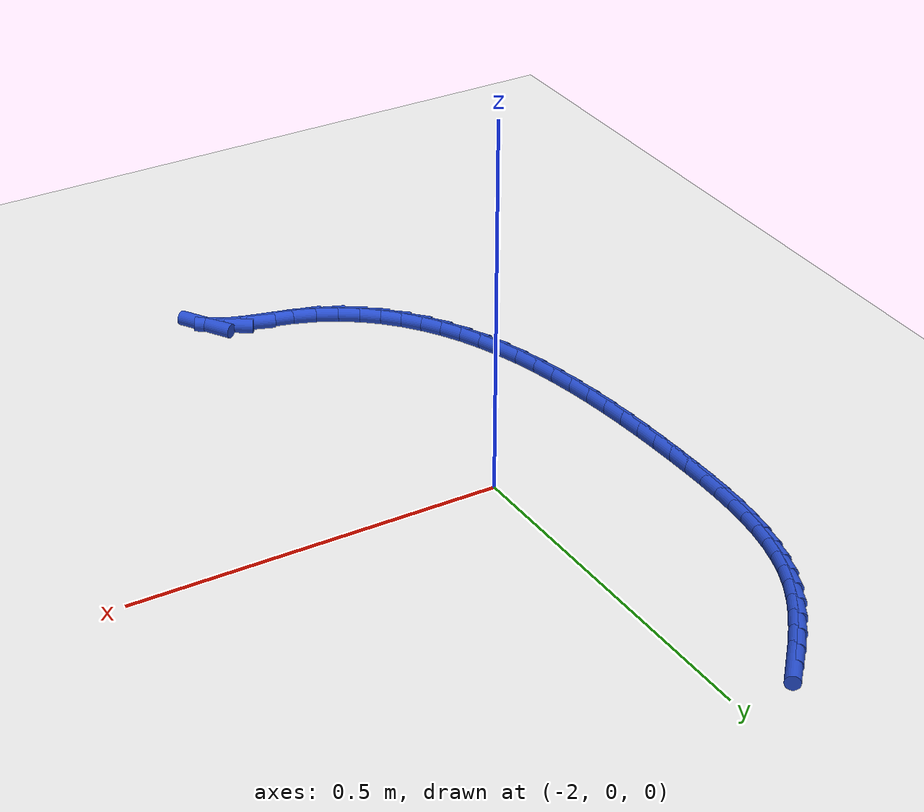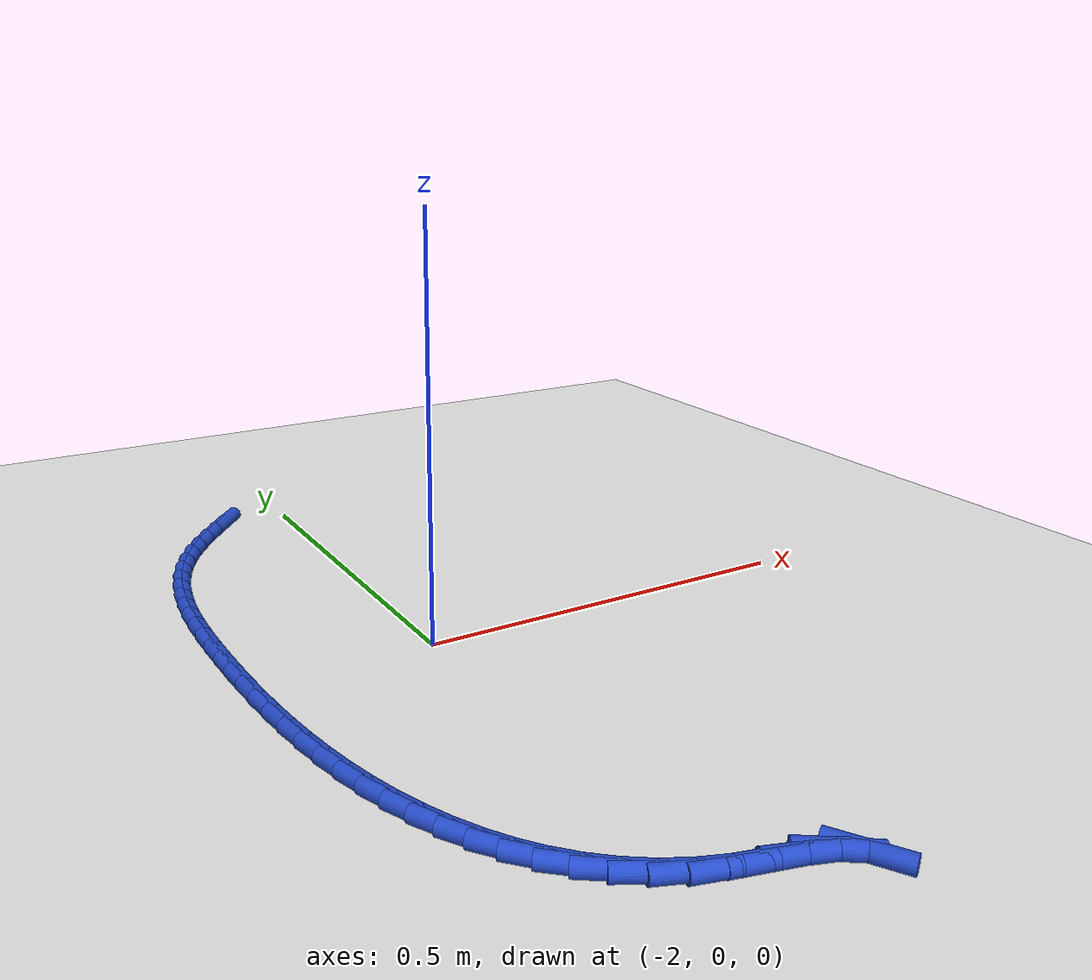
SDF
<sdf version="1.6">
 <world name="default">
  <model name="ground_plane">
   <static>1</static>
   <link name="link">
    <collision name="collision">
     <geometry><plane><normal>0 0 1</normal><size>100 100</size></plane></geometry>
     <surface><friction><ode><mu>100</mu><mu2>50</mu2></ode></friction></surface>
    </collision>
    <visual name="visual">
     <cast_shadows>0</cast_shadows>
     <geometry><plane><normal>0 0 1</normal><size>100 100</size></plane></geometry>
     <material>
      <script><uri>file://media/materials/scripts/gazebo.material</uri><name>Gazebo/WhiteGlow</name></script>
     </material>
    </visual>
   </link>
  </model>
  <model name="line">
   <link name="link_101">
    <pose>-2.095246299958888 0.4884862712042234 0.01 0 1.57 0.8736026142234244</pose>
    <collision name="collision">
     <geometry><cylinder><radius>0.01</radius><length>0.08</length></cylinder></geometry>
    </collision>
    <visual name="visual">
     <material>
      <script><name>Gazebo/Blue</name><uri>file://media/materials/scripts/gazebo.material</uri></script>
     </material>
     <geometry><cylinder><radius>0.01</radius><length>0.08</length></cylinder></geometry>
    </visual>
   </link>
   <link name="link_102">
    <pose>-2.115105131242476 0.4647743038715531 0.01 0 1.57 0.9028716398551533</pose>
    <collision name="collision">
     <geometry><cylinder><radius>0.01</radius><length>0.08</length></cylinder></geometry>
    </collision>
    <visual name="visual">
     <material>
      <script><name>Gazebo/Blue</name><uri>file://media/materials/scripts/gazebo.material</uri></script>
     </material>
     <geometry><cylinder><radius>0.01</radius><length>0.08</length></cylinder></geometry>
    </visual>
   </link>
   <link name="link_103">
    <pose>-2.134064356856189 0.4407412666133561 0.01 0 1.57 0.9443984838956437</pose>
    <collision name="collision">
     <geometry><cylinder><radius>0.01</radius><length>0.08</length></cylinder></geometry>
    </collision>
    <visual name="visual">
     <material>
      <script><name>Gazebo/Blue</name><uri>file://media/materials/scripts/gazebo.material</uri></script>
     </material>
     <geometry><cylinder><radius>0.01</radius><length>0.08</length></cylinder></geometry>
    </visual>
   </link>
   <link name="link_104">
    <pose>-2.1517809406140986 0.41625772820655715 0.01 0 1.57 0.9989318150647336</pose>
    <collision name="collision">
     <geometry><cylinder><radius>0.01</radius><length>0.08</length></cylinder></geometry>
    </collision>
    <visual name="visual">
     <material>
      <script><name>Gazebo/Blue</name><uri>file://media/materials/scripts/gazebo.material</uri></script>
     </material>
     <geometry><cylinder><radius>0.01</radius><length>0.08</length></cylinder></geometry>
    </visual>
   </link>
   <link name="link_105">
    <pose>-2.1679118463302776 0.39119425742808245 0.01 0 1.57 1.067145214923841</pose>
    <collision name="collision">
     <geometry><cylinder><radius>0.01</radius><length>0.08</length></cylinder></geometry>
    </collision>
    <visual name="visual">
     <material>
      <script><name>Gazebo/Blue</name><uri>file://media/materials/scripts/gazebo.material</uri></script>
     </material>
     <geometry><cylinder><radius>0.01</radius><length>0.08</length></cylinder></geometry>
    </visual>
   </link>
   <link name="link_106">
    <pose>-2.182114037818798 0.36542142305485686 0.01 0 1.57 1.1478703538519937</pose>
    <collision name="collision">
     <geometry><cylinder><radius>0.01</radius><length>0.08</length></cylinder></geometry>
    </collision>
    <visual name="visual">
     <material>
      <script><name>Gazebo/Blue</name><uri>file://media/materials/scripts/gazebo.material</uri></script>
     </material>
     <geometry><cylinder><radius>0.01</radius><length>0.08</length></cylinder></geometry>
    </visual>
   </link>
   <link name="link_107">
    <pose>-2.194086227001875 0.3388216794875557 0.01 0 1.57 1.2286484760533884</pose>
    <collision name="collision">
     <geometry><cylinder><radius>0.01</radius><length>0.08</length></cylinder></geometry>
    </collision>
    <visual name="visual">
     <material>
      <script><name>Gazebo/Blue</name><uri>file://media/materials/scripts/gazebo.material</uri></script>
     </material>
     <geometry><cylinder><radius>0.01</radius><length>0.08</length></cylinder></geometry>
    </visual>
   </link>
   <link name="link_108">
    <pose>-2.203862258634103 0.31137289294140424 0.01 0 1.57 1.302442038383089</pose>
    <collision name="collision">
     <geometry><cylinder><radius>0.01</radius><length>0.08</length></cylinder></geometry>
    </collision>
    <visual name="visual">
     <material>
      <script><name>Gazebo/Blue</name><uri>file://media/materials/scripts/gazebo.material</uri></script>
     </material>
     <geometry><cylinder><radius>0.01</radius><length>0.08</length></cylinder></geometry>
    </visual>
   </link>
   <link name="link_109">
    <pose>-2.2116372588958693 0.28309884621156745 0.01 0 1.57 1.3682774759713874</pose>
    <collision name="collision">
     <geometry><cylinder><radius>0.01</radius><length>0.08</length></cylinder></geometry>
    </collision>
    <visual name="visual">
     <material>
      <script><name>Gazebo/Blue</name><uri>file://media/materials/scripts/gazebo.material</uri></script>
     </material>
     <geometry><cylinder><radius>0.01</radius><length>0.08</length></cylinder></geometry>
    </visual>
   </link>
   <link name="link_110">
    <pose>-2.217607384597836 0.2540236155121025 0.01 0 1.57 1.4257233382082146</pose>
    <collision name="collision">
     <geometry><cylinder><radius>0.01</radius><length>0.08</length></cylinder></geometry>
    </collision>
    <visual name="visual">
     <material>
      <script><name>Gazebo/Blue</name><uri>file://media/materials/scripts/gazebo.material</uri></script>
     </material>
     <geometry><cylinder><radius>0.01</radius><length>0.08</length></cylinder></geometry>
    </visual>
   </link>
   <link name="link_111">
    <pose>-2.221968792550665 0.22417127705706658 0.01 0 1.57 1.4747421914005194</pose>
    <collision name="collision">
     <geometry><cylinder><radius>0.01</radius><length>0.08</length></cylinder></geometry>
    </collision>
    <visual name="visual">
     <material>
      <script><name>Gazebo/Blue</name><uri>file://media/materials/scripts/gazebo.material</uri></script>
     </material>
     <geometry><cylinder><radius>0.01</radius><length>0.08</length></cylinder></geometry>
    </visual>
   </link>
   <link name="link_112">
    <pose>-2.2249176395650188 0.19356590706051668 0.01 0 1.57 1.5155635807774035</pose>
    <collision name="collision">
     <geometry><cylinder><radius>0.01</radius><length>0.08</length></cylinder></geometry>
    </collision>
    <visual name="visual">
     <material>
      <script><name>Gazebo/Blue</name><uri>file://media/materials/scripts/gazebo.material</uri></script>
     </material>
     <geometry><cylinder><radius>0.01</radius><length>0.08</length></cylinder></geometry>
    </visual>
   </link>
   <link name="link_113">
    <pose>-2.2266500824515583 0.16223158173651106 0.01 0 1.57 1.5485711088913037</pose>
    <collision name="collision">
     <geometry><cylinder><radius>0.01</radius><length>0.08</length></cylinder></geometry>
    </collision>
    <visual name="visual">
     <material>
      <script><name>Gazebo/Blue</name><uri>file://media/materials/scripts/gazebo.material</uri></script>
     </material>
     <geometry><cylinder><radius>0.01</radius><length>0.08</length></cylinder></geometry>
    </visual>
   </link>
   <link name="link_114">
    <pose>-2.2273622780209474 0.1301923772991067 0.01 0 1.57 -1.5673765689765466</pose>
    <collision name="collision">
     <geometry><cylinder><radius>0.01</radius><length>0.08</length></cylinder></geometry>
    </collision>
    <visual name="visual">
     <material>
      <script><name>Gazebo/Blue</name><uri>file://media/materials/scripts/gazebo.material</uri></script>
     </material>
     <geometry><cylinder><radius>0.01</radius><length>0.08</length></cylinder></geometry>
    </visual>
   </link>
   <link name="link_115">
    <pose>-2.2272503830838466 0.09747236996236047 0.01 0 1.57 -1.5486339576094355</pose>
    <collision name="collision">
     <geometry><cylinder><radius>0.01</radius><length>0.08</length></cylinder></geometry>
    </collision>
    <visual name="visual">
     <material>
      <script><name>Gazebo/Blue</name><uri>file://media/materials/scripts/gazebo.material</uri></script>
     </material>
     <geometry><cylinder><radius>0.01</radius><length>0.08</length></cylinder></geometry>
    </visual>
   </link>
   <link name="link_116">
    <pose>-2.226510554450919 0.06409563594033069 0.01 0 1.57 -1.5349998627212986</pose>
    <collision name="collision">
     <geometry><cylinder><radius>0.01</radius><length>0.08</length></cylinder></geometry>
    </collision>
    <visual name="visual">
     <material>
      <script><name>Gazebo/Blue</name><uri>file://media/materials/scripts/gazebo.material</uri></script>
     </material>
     <geometry><cylinder><radius>0.01</radius><length>0.08</length></cylinder></geometry>
    </visual>
   </link>
   <link name="link_117">
    <pose>-2.225293464238758 0.03010986821798673 0.01 0 1.57 -1.5201254011546725</pose>
    <collision name="collision">
     <geometry><cylinder><radius>0.01</radius><length>0.08</length></cylinder></geometry>
    </collision>
    <visual name="visual">
     <material>
      <script><name>Gazebo/Blue</name><uri>file://media/materials/scripts/gazebo.material</uri></script>
     </material>
     <geometry><cylinder><radius>0.01</radius><length>0.08</length></cylinder></geometry>
    </visual>
   </link>
   <link name="link_118">
    <pose>-2.2235467761884466 -0.004331833282360545 0.01 0 1.57 -1.502195282892215</pose>
    <collision name="collision">
     <geometry><cylinder><radius>0.01</radius><length>0.08</length></cylinder></geometry>
    </collision>
    <visual name="visual">
     <material>
      <script><name>Gazebo/Blue</name><uri>file://media/materials/scripts/gazebo.material</uri></script>
     </material>
     <geometry><cylinder><radius>0.01</radius><length>0.08</length></cylinder></geometry>
    </visual>
   </link>
   <link name="link_119">
    <pose>-2.221161538502298 -0.0390469724593861 0.01 0 1.57 -1.4810326111202474</pose>
    <collision name="collision">
     <geometry><cylinder><radius>0.01</radius><length>0.08</length></cylinder></geometry>
    </collision>
    <visual name="visual">
     <material>
      <script><name>Gazebo/Blue</name><uri>file://media/materials/scripts/gazebo.material</uri></script>
     </material>
     <geometry><cylinder><radius>0.01</radius><length>0.08</length></cylinder></geometry>
    </visual>
   </link>
   <link name="link_120">
    <pose>-2.218028796910353 -0.07385305192810045 0.01 0 1.57 -1.4563837478082189</pose>
    <collision name="collision">
     <geometry><cylinder><radius>0.01</radius><length>0.08</length></cylinder></geometry>
    </collision>
    <visual name="visual">
     <material>
      <script><name>Gazebo/Blue</name><uri>file://media/materials/scripts/gazebo.material</uri></script>
     </material>
     <geometry><cylinder><radius>0.01</radius><length>0.08</length></cylinder></geometry>
    </visual>
   </link>
   <link name="link_121">
    <pose>-2.2140395971426554 -0.10856757430351548 0.01 0 1.57 -1.4279164255188967</pose>
    <collision name="collision">
     <geometry><cylinder><radius>0.01</radius><length>0.08</length></cylinder></geometry>
    </collision>
    <visual name="visual">
     <material>
      <script><name>Gazebo/Blue</name><uri>file://media/materials/scripts/gazebo.material</uri></script>
     </material>
     <geometry><cylinder><radius>0.01</radius><length>0.08</length></cylinder></geometry>
    </visual>
   </link>
   <link name="link_122">
    <pose>-2.209084984929247 -0.14300804220064264 0.01 0 1.57 -1.3952163042216463</pose>
    <collision name="collision">
     <geometry><cylinder><radius>0.01</radius><length>0.08</length></cylinder></geometry>
    </collision>
    <visual name="visual">
     <material>
      <script><name>Gazebo/Blue</name><uri>file://media/materials/scripts/gazebo.material</uri></script>
     </material>
     <geometry><cylinder><radius>0.01</radius><length>0.08</length></cylinder></geometry>
    </visual>
   </link>
   <link name="link_123">
    <pose>-2.2030560060001707 -0.17699195823449343 0.01 0 1.57 -1.3577835167807562</pose>
    <collision name="collision">
     <geometry><cylinder><radius>0.01</radius><length>0.08</length></cylinder></geometry>
    </collision>
    <visual name="visual">
     <material>
      <script><name>Gazebo/Blue</name><uri>file://media/materials/scripts/gazebo.material</uri></script>
     </material>
     <geometry><cylinder><radius>0.01</radius><length>0.08</length></cylinder></geometry>
    </visual>
   </link>
   <link name="link_124">
    <pose>-2.1958437060854674 -0.21033682502007922 0.01 0 1.57 -1.3150316197914258</pose>
    <collision name="collision">
     <geometry><cylinder><radius>0.01</radius><length>0.08</length></cylinder></geometry>
    </collision>
    <visual name="visual">
     <material>
      <script><name>Gazebo/Blue</name><uri>file://media/materials/scripts/gazebo.material</uri></script>
     </material>
     <geometry><cylinder><radius>0.01</radius><length>0.08</length></cylinder></geometry>
    </visual>
   </link>
   <link name="link_125">
    <pose>-2.1873391309151815 -0.2428601451724124 0.01 0 1.57 -1.2662927638131019</pose>
    <collision name="collision">
     <geometry><cylinder><radius>0.01</radius><length>0.08</length></cylinder></geometry>
    </collision>
    <visual name="visual">
     <material>
      <script><name>Gazebo/Blue</name><uri>file://media/materials/scripts/gazebo.material</uri></script>
     </material>
     <geometry><cylinder><radius>0.01</radius><length>0.08</length></cylinder></geometry>
    </visual>
   </link>
   <link name="link_126">
    <pose>-2.177433326219353 -0.27437942130650256 0.01 0 1.57 -1.2108350033561854</pose>
    <collision name="collision">
     <geometry><cylinder><radius>0.01</radius><length>0.08</length></cylinder></geometry>
    </collision>
    <visual name="visual">
     <material>
      <script><name>Gazebo/Blue</name><uri>file://media/materials/scripts/gazebo.material</uri></script>
     </material>
     <geometry><cylinder><radius>0.01</radius><length>0.08</length></cylinder></geometry>
    </visual>
   </link>
   <link name="link_127">
    <pose>-2.1660173377280256 -0.304712156037362 0.01 0 1.57 -1.1479003850581433</pose>
    <collision name="collision">
     <geometry><cylinder><radius>0.01</radius><length>0.08</length></cylinder></geometry>
    </collision>
    <visual name="visual">
     <material>
      <script><name>Gazebo/Blue</name><uri>file://media/materials/scripts/gazebo.material</uri></script>
     </material>
     <geometry><cylinder><radius>0.01</radius><length>0.08</length></cylinder></geometry>
    </visual>
   </link>
   <link name="link_128">
    <pose>-2.152982211171242 -0.3336758519800025 0.01 0 1.57 -1.0767750641102416</pose>
    <collision name="collision">
     <geometry><cylinder><radius>0.01</radius><length>0.08</length></cylinder></geometry>
    </collision>
    <visual name="visual">
     <material>
      <script><name>Gazebo/Blue</name><uri>file://media/materials/scripts/gazebo.material</uri></script>
     </material>
     <geometry><cylinder><radius>0.01</radius><length>0.08</length></cylinder></geometry>
    </visual>
   </link>
   <link name="link_129">
    <pose>-2.138218992279043 -0.36108801174943506 0.01 0 1.57 -0.9969031620404595</pose>
    <collision name="collision">
     <geometry><cylinder><radius>0.01</radius><length>0.08</length></cylinder></geometry>
    </collision>
    <visual name="visual">
     <material>
      <script><name>Gazebo/Blue</name><uri>file://media/materials/scripts/gazebo.material</uri></script>
     </material>
     <geometry><cylinder><radius>0.01</radius><length>0.08</length></cylinder></geometry>
    </visual>
   </link>
   <link name="link_130">
    <pose>-2.121618726781473 -0.3867661379606714 0.01 0 1.57 -0.9080503153531257</pose>
    <collision name="collision">
     <geometry><cylinder><radius>0.01</radius><length>0.08</length></cylinder></geometry>
    </collision>
    <visual name="visual">
     <material>
      <script><name>Gazebo/Blue</name><uri>file://media/materials/scripts/gazebo.material</uri></script>
     </material>
     <geometry><cylinder><radius>0.01</radius><length>0.08</length></cylinder></geometry>
    </visual>
   </link>
   <link name="link_131">
    <pose>-2.103072460408572 -0.41052773322872277 0.01 0 1.57 -0.8105052926521453</pose>
    <collision name="collision">
     <geometry><cylinder><radius>0.01</radius><length>0.08</length></cylinder></geometry>
    </collision>
    <visual name="visual">
     <material>
      <script><name>Gazebo/Blue</name><uri>file://media/materials/scripts/gazebo.material</uri></script>
     </material>
     <geometry><cylinder><radius>0.01</radius><length>0.08</length></cylinder></geometry>
    </visual>
   </link>
   <link name="link_132">
    <pose>-2.0824712388903848 -0.43219030016860144 0.01 0 1.57 -0.7052759372398526</pose>
    <collision name="collision">
     <geometry><cylinder><radius>0.01</radius><length>0.08</length></cylinder></geometry>
    </collision>
    <visual name="visual">
     <material>
      <script><name>Gazebo/Blue</name><uri>file://media/materials/scripts/gazebo.material</uri></script>
     </material>
     <geometry><cylinder><radius>0.01</radius><length>0.08</length></cylinder></geometry>
    </visual>
   </link>
   <link name="link_133">
    <pose>-2.059706107956951 -0.4515713413953173 0.01 0 1.57 -0.5941987373428722</pose>
    <collision name="collision">
     <geometry><cylinder><radius>0.01</radius><length>0.08</length></cylinder></geometry>
    </collision>
    <visual name="visual">
     <material>
      <script><name>Gazebo/Blue</name><uri>file://media/materials/scripts/gazebo.material</uri></script>
     </material>
     <geometry><cylinder><radius>0.01</radius><length>0.08</length></cylinder></geometry>
    </visual>
   </link>
   <link name="link_134">
    <pose>-2.034668113338316 -0.4684883595238829 0.01 0 1.57 -0.47986931901812013</pose>
    <collision name="collision">
     <geometry><cylinder><radius>0.01</radius><length>0.08</length></cylinder></geometry>
    </collision>
    <visual name="visual">
     <material>
      <script><name>Gazebo/Blue</name><uri>file://media/materials/scripts/gazebo.material</uri></script>
     </material>
     <geometry><cylinder><radius>0.01</radius><length>0.08</length></cylinder></geometry>
    </visual>
   </link>
   <link name="link_135">
    <pose>-2.0072483007645197 -0.48275885716930933 0.01 0 1.57 -0.36534960983908865</pose>
    <collision name="collision">
     <geometry><cylinder><radius>0.01</radius><length>0.08</length></cylinder></geometry>
    </collision>
    <visual name="visual">
     <material>
      <script><name>Gazebo/Blue</name><uri>file://media/materials/scripts/gazebo.material</uri></script>
     </material>
     <geometry><cylinder><radius>0.01</radius><length>0.08</length></cylinder></geometry>
    </visual>
   </link>
   <link name="link_136">
    <pose>-1.9773377159656056 -0.4942003369466081 0.01 0 1.57 -0.2668181219177507</pose>
    <collision name="collision">
     <geometry><cylinder><radius>0.01</radius><length>0.08</length></cylinder></geometry>
    </collision>
    <visual name="visual">
     <material>
      <script><name>Gazebo/Blue</name><uri>file://media/materials/scripts/gazebo.material</uri></script>
     </material>
     <geometry><cylinder><radius>0.01</radius><length>0.08</length></cylinder></geometry>
    </visual>
   </link>
   <link name="link_137">
    <pose>-1.9452727176960454 -0.5029648406936472 0.01 0 1.57 -0.24807037998601986</pose>
    <collision name="collision">
     <geometry><cylinder><radius>0.01</radius><length>0.08</length></cylinder></geometry>
    </collision>
    <visual name="visual">
     <material>
      <script><name>Gazebo/Blue</name><uri>file://media/materials/scripts/gazebo.material</uri></script>
     </material>
     <geometry><cylinder><radius>0.01</radius><length>0.08</length></cylinder></geometry>
    </visual>
   </link>
   <link name="link_138">
    <pose>-1.913721678896251 -0.5109563244539346 0.01 0 1.57 -0.33768097659782553</pose>
    <collision name="collision">
     <geometry><cylinder><radius>0.01</radius><length>0.08</length></cylinder></geometry>
    </collision>
    <visual name="visual">
     <material>
      <script><name>Gazebo/Blue</name><uri>file://media/materials/scripts/gazebo.material</uri></script>
     </material>
     <geometry><cylinder><radius>0.01</radius><length>0.08</length></cylinder></geometry>
    </visual>
   </link>
   <link name="link_139">
    <pose>-1.8861137651010322 -0.520650285971585 0.01 0 1.57 -0.5981431816075372</pose>
    <collision name="collision">
     <geometry><cylinder><radius>0.01</radius><length>0.08</length></cylinder></geometry>
    </collision>
    <visual name="visual">
     <material>
      <script><name>Gazebo/Blue</name><uri>file://media/materials/scripts/gazebo.material</uri></script>
     </material>
     <geometry><cylinder><radius>0.01</radius><length>0.08</length></cylinder></geometry>
    </visual>
   </link>
   <link name="link_140">
    <pose>-1.8658171992185397 -0.5344806577068762 0.01 0 1.57 -1.0209909601181588</pose>
    <collision name="collision">
     <geometry><cylinder><radius>0.01</radius><length>0.08</length></cylinder></geometry>
    </collision>
    <visual name="visual">
     <material>
      <script><name>Gazebo/Blue</name><uri>file://media/materials/scripts/gazebo.material</uri></script>
     </material>
     <geometry><cylinder><radius>0.01</radius><length>0.08</length></cylinder></geometry>
    </visual>
   </link>
  </model>
 </world>
</sdf>
